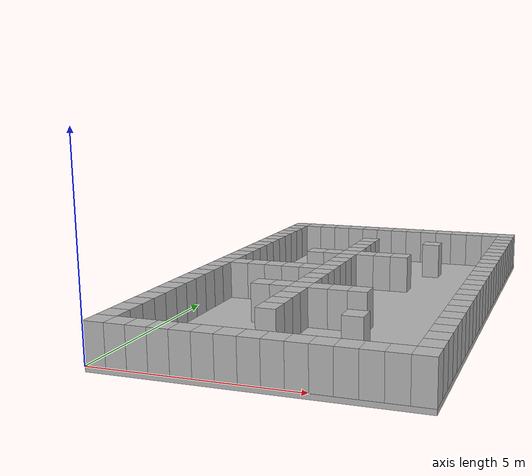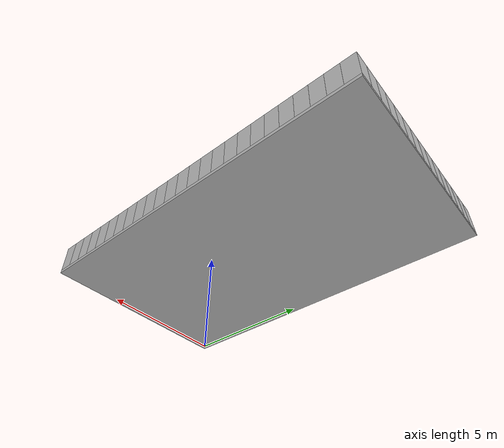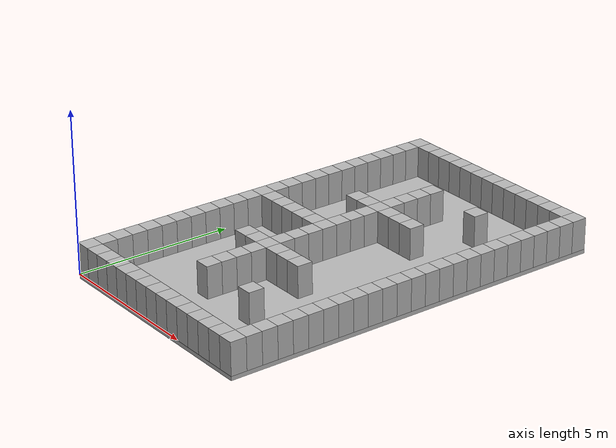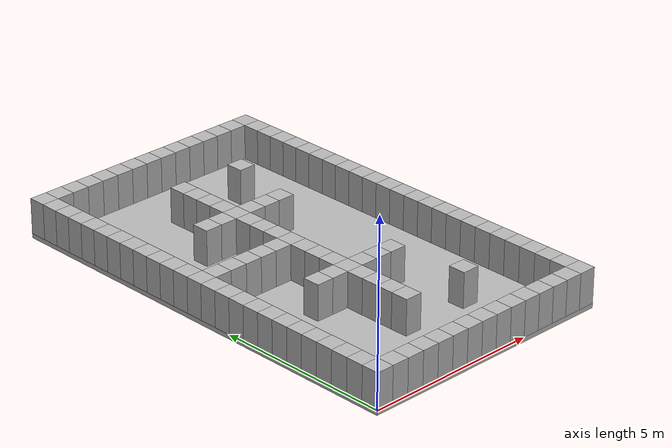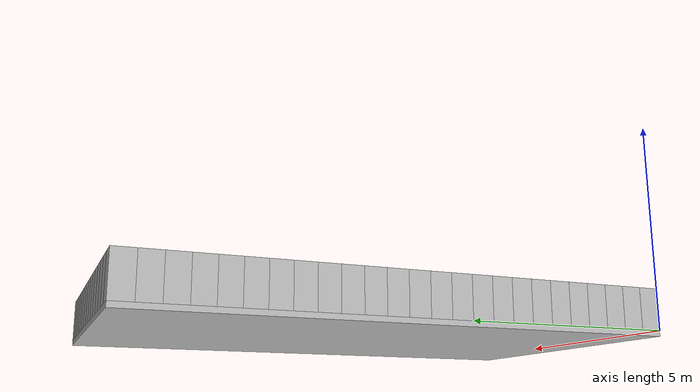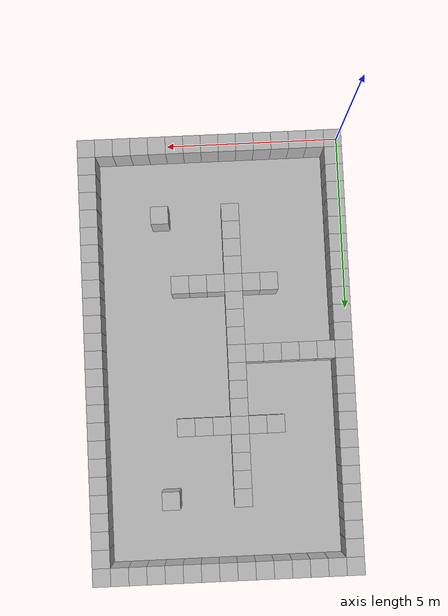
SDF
<sdf version="1.5">
  <model name="map">
    <static>1</static>
    <link name="map">
      <collision name="floor">
        <pose>3.75 6.25 -0.0625 0 0 0</pose>
        <geometry>
          <box>
            <size>7.5 12.5 0.125</size>
          </box>
        </geometry>
      </collision>
      <visual name="floor">
        <pose>3.75 6.25 -0.0625 0 0 0</pose>
        <geometry>
          <box>
            <size>7.5 12.5 0.125</size>
          </box>
        </geometry>
      </visual>
      <collision name="box_0_0">
        <pose>0.25 0.25 0.5 0 0 0</pose>
        <geometry>
          <box>
            <size>0.5 0.5 1.0</size>
          </box>
        </geometry>
      </collision>
      <visual name="box_0_0">
        <pose>0.25 0.25 0.5 0 0 0</pose>
        <geometry>
          <box>
            <size>0.5 0.5 1.0</size>
          </box>
        </geometry>
      </visual>
      <collision name="box_0_1">
        <pose>0.25 0.75 0.5 0 0 0</pose>
        <geometry>
          <box>
            <size>0.5 0.5 1.0</size>
          </box>
        </geometry>
      </collision>
      <visual name="box_0_1">
        <pose>0.25 0.75 0.5 0 0 0</pose>
        <geometry>
          <box>
            <size>0.5 0.5 1.0</size>
          </box>
        </geometry>
      </visual>
      <collision name="box_0_2">
        <pose>0.25 1.25 0.5 0 0 0</pose>
        <geometry>
          <box>
            <size>0.5 0.5 1.0</size>
          </box>
        </geometry>
      </collision>
      <visual name="box_0_2">
        <pose>0.25 1.25 0.5 0 0 0</pose>
        <geometry>
          <box>
            <size>0.5 0.5 1.0</size>
          </box>
        </geometry>
      </visual>
      <collision name="box_0_3">
        <pose>0.25 1.75 0.5 0 0 0</pose>
        <geometry>
          <box>
            <size>0.5 0.5 1.0</size>
          </box>
        </geometry>
      </collision>
      <visual name="box_0_3">
        <pose>0.25 1.75 0.5 0 0 0</pose>
        <geometry>
          <box>
            <size>0.5 0.5 1.0</size>
          </box>
        </geometry>
      </visual>
      <collision name="box_0_4">
        <pose>0.25 2.25 0.5 0 0 0</pose>
        <geometry>
          <box>
            <size>0.5 0.5 1.0</size>
          </box>
        </geometry>
      </collision>
      <visual name="box_0_4">
        <pose>0.25 2.25 0.5 0 0 0</pose>
        <geometry>
          <box>
            <size>0.5 0.5 1.0</size>
          </box>
        </geometry>
      </visual>
      <collision name="box_0_5">
        <pose>0.25 2.75 0.5 0 0 0</pose>
        <geometry>
          <box>
            <size>0.5 0.5 1.0</size>
          </box>
        </geometry>
      </collision>
      <visual name="box_0_5">
        <pose>0.25 2.75 0.5 0 0 0</pose>
        <geometry>
          <box>
            <size>0.5 0.5 1.0</size>
          </box>
        </geometry>
      </visual>
      <collision name="box_0_6">
        <pose>0.25 3.25 0.5 0 0 0</pose>
        <geometry>
          <box>
            <size>0.5 0.5 1.0</size>
          </box>
        </geometry>
      </collision>
      <visual name="box_0_6">
        <pose>0.25 3.25 0.5 0 0 0</pose>
        <geometry>
          <box>
            <size>0.5 0.5 1.0</size>
          </box>
        </geometry>
      </visual>
      <collision name="box_0_7">
        <pose>0.25 3.75 0.5 0 0 0</pose>
        <geometry>
          <box>
            <size>0.5 0.5 1.0</size>
          </box>
        </geometry>
      </collision>
      <visual name="box_0_7">
        <pose>0.25 3.75 0.5 0 0 0</pose>
        <geometry>
          <box>
            <size>0.5 0.5 1.0</size>
          </box>
        </geometry>
      </visual>
      <collision name="box_0_8">
        <pose>0.25 4.25 0.5 0 0 0</pose>
        <geometry>
          <box>
            <size>0.5 0.5 1.0</size>
          </box>
        </geometry>
      </collision>
      <visual name="box_0_8">
        <pose>0.25 4.25 0.5 0 0 0</pose>
        <geometry>
          <box>
            <size>0.5 0.5 1.0</size>
          </box>
        </geometry>
      </visual>
      <collision name="box_0_9">
        <pose>0.25 4.75 0.5 0 0 0</pose>
        <geometry>
          <box>
            <size>0.5 0.5 1.0</size>
          </box>
        </geometry>
      </collision>
      <visual name="box_0_9">
        <pose>0.25 4.75 0.5 0 0 0</pose>
        <geometry>
          <box>
            <size>0.5 0.5 1.0</size>
          </box>
        </geometry>
      </visual>
      <collision name="box_0_10">
        <pose>0.25 5.25 0.5 0 0 0</pose>
        <geometry>
          <box>
            <size>0.5 0.5 1.0</size>
          </box>
        </geometry>
      </collision>
      <visual name="box_0_10">
        <pose>0.25 5.25 0.5 0 0 0</pose>
        <geometry>
          <box>
            <size>0.5 0.5 1.0</size>
          </box>
        </geometry>
      </visual>
      <collision name="box_0_11">
        <pose>0.25 5.75 0.5 0 0 0</pose>
        <geometry>
          <box>
            <size>0.5 0.5 1.0</size>
          </box>
        </geometry>
      </collision>
      <visual name="box_0_11">
        <pose>0.25 5.75 0.5 0 0 0</pose>
        <geometry>
          <box>
            <size>0.5 0.5 1.0</size>
          </box>
        </geometry>
      </visual>
      <collision name="box_0_12">
        <pose>0.25 6.25 0.5 0 0 0</pose>
        <geometry>
          <box>
            <size>0.5 0.5 1.0</size>
          </box>
        </geometry>
      </collision>
      <visual name="box_0_12">
        <pose>0.25 6.25 0.5 0 0 0</pose>
        <geometry>
          <box>
            <size>0.5 0.5 1.0</size>
          </box>
        </geometry>
      </visual>
      <collision name="box_0_13">
        <pose>0.25 6.75 0.5 0 0 0</pose>
        <geometry>
          <box>
            <size>0.5 0.5 1.0</size>
          </box>
        </geometry>
      </collision>
      <visual name="box_0_13">
        <pose>0.25 6.75 0.5 0 0 0</pose>
        <geometry>
          <box>
            <size>0.5 0.5 1.0</size>
          </box>
        </geometry>
      </visual>
      <collision name="box_0_14">
        <pose>0.25 7.25 0.5 0 0 0</pose>
        <geometry>
          <box>
            <size>0.5 0.5 1.0</size>
          </box>
        </geometry>
      </collision>
      <visual name="box_0_14">
        <pose>0.25 7.25 0.5 0 0 0</pose>
        <geometry>
          <box>
            <size>0.5 0.5 1.0</size>
          </box>
        </geometry>
      </visual>
      <collision name="box_0_15">
        <pose>0.25 7.75 0.5 0 0 0</pose>
        <geometry>
          <box>
            <size>0.5 0.5 1.0</size>
          </box>
        </geometry>
      </collision>
      <visual name="box_0_15">
        <pose>0.25 7.75 0.5 0 0 0</pose>
        <geometry>
          <box>
            <size>0.5 0.5 1.0</size>
          </box>
        </geometry>
      </visual>
      <collision name="box_0_16">
        <pose>0.25 8.25 0.5 0 0 0</pose>
        <geometry>
          <box>
            <size>0.5 0.5 1.0</size>
          </box>
        </geometry>
      </collision>
      <visual name="box_0_16">
        <pose>0.25 8.25 0.5 0 0 0</pose>
        <geometry>
          <box>
            <size>0.5 0.5 1.0</size>
          </box>
        </geometry>
      </visual>
      <collision name="box_0_17">
        <pose>0.25 8.75 0.5 0 0 0</pose>
        <geometry>
          <box>
            <size>0.5 0.5 1.0</size>
          </box>
        </geometry>
      </collision>
      <visual name="box_0_17">
        <pose>0.25 8.75 0.5 0 0 0</pose>
        <geometry>
          <box>
            <size>0.5 0.5 1.0</size>
          </box>
        </geometry>
      </visual>
      <collision name="box_0_18">
        <pose>0.25 9.25 0.5 0 0 0</pose>
        <geometry>
          <box>
            <size>0.5 0.5 1.0</size>
          </box>
        </geometry>
      </collision>
      <visual name="box_0_18">
        <pose>0.25 9.25 0.5 0 0 0</pose>
        <geometry>
          <box>
            <size>0.5 0.5 1.0</size>
          </box>
        </geometry>
      </visual>
      <collision name="box_0_19">
        <pose>0.25 9.75 0.5 0 0 0</pose>
        <geometry>
          <box>
            <size>0.5 0.5 1.0</size>
          </box>
        </geometry>
      </collision>
      <visual name="box_0_19">
        <pose>0.25 9.75 0.5 0 0 0</pose>
        <geometry>
          <box>
            <size>0.5 0.5 1.0</size>
          </box>
        </geometry>
      </visual>
      <collision name="box_0_20">
        <pose>0.25 10.25 0.5 0 0 0</pose>
        <geometry>
          <box>
            <size>0.5 0.5 1.0</size>
          </box>
        </geometry>
      </collision>
      <visual name="box_0_20">
        <pose>0.25 10.25 0.5 0 0 0</pose>
        <geometry>
          <box>
            <size>0.5 0.5 1.0</size>
          </box>
        </geometry>
      </visual>
      <collision name="box_0_21">
        <pose>0.25 10.75 0.5 0 0 0</pose>
        <geometry>
          <box>
            <size>0.5 0.5 1.0</size>
          </box>
        </geometry>
      </collision>
      <visual name="box_0_21">
        <pose>0.25 10.75 0.5 0 0 0</pose>
        <geometry>
          <box>
            <size>0.5 0.5 1.0</size>
          </box>
        </geometry>
      </visual>
      <collision name="box_0_22">
        <pose>0.25 11.25 0.5 0 0 0</pose>
        <geometry>
          <box>
            <size>0.5 0.5 1.0</size>
          </box>
        </geometry>
      </collision>
      <visual name="box_0_22">
        <pose>0.25 11.25 0.5 0 0 0</pose>
        <geometry>
          <box>
            <size>0.5 0.5 1.0</size>
          </box>
        </geometry>
      </visual>
      <collision name="box_0_23">
        <pose>0.25 11.75 0.5 0 0 0</pose>
        <geometry>
          <box>
            <size>0.5 0.5 1.0</size>
          </box>
        </geometry>
      </collision>
      <visual name="box_0_23">
        <pose>0.25 11.75 0.5 0 0 0</pose>
        <geometry>
          <box>
            <size>0.5 0.5 1.0</size>
          </box>
        </geometry>
      </visual>
      <collision name="box_0_24">
        <pose>0.25 12.25 0.5 0 0 0</pose>
        <geometry>
          <box>
            <size>0.5 0.5 1.0</size>
          </box>
        </geometry>
      </collision>
      <visual name="box_0_24">
        <pose>0.25 12.25 0.5 0 0 0</pose>
        <geometry>
          <box>
            <size>0.5 0.5 1.0</size>
          </box>
        </geometry>
      </visual>
      <collision name="box_1_0">
        <pose>0.75 0.25 0.5 0 0 0</pose>
        <geometry>
          <box>
            <size>0.5 0.5 1.0</size>
          </box>
        </geometry>
      </collision>
      <visual name="box_1_0">
        <pose>0.75 0.25 0.5 0 0 0</pose>
        <geometry>
          <box>
            <size>0.5 0.5 1.0</size>
          </box>
        </geometry>
      </visual>
      <collision name="box_1_12">
        <pose>0.75 6.25 0.5 0 0 0</pose>
        <geometry>
          <box>
            <size>0.5 0.5 1.0</size>
          </box>
        </geometry>
      </collision>
      <visual name="box_1_12">
        <pose>0.75 6.25 0.5 0 0 0</pose>
        <geometry>
          <box>
            <size>0.5 0.5 1.0</size>
          </box>
        </geometry>
      </visual>
      <collision name="box_1_24">
        <pose>0.75 12.25 0.5 0 0 0</pose>
        <geometry>
          <box>
            <size>0.5 0.5 1.0</size>
          </box>
        </geometry>
      </collision>
      <visual name="box_1_24">
        <pose>0.75 12.25 0.5 0 0 0</pose>
        <geometry>
          <box>
            <size>0.5 0.5 1.0</size>
          </box>
        </geometry>
      </visual>
      <collision name="box_2_0">
        <pose>1.25 0.25 0.5 0 0 0</pose>
        <geometry>
          <box>
            <size>0.5 0.5 1.0</size>
          </box>
        </geometry>
      </collision>
      <visual name="box_2_0">
        <pose>1.25 0.25 0.5 0 0 0</pose>
        <geometry>
          <box>
            <size>0.5 0.5 1.0</size>
          </box>
        </geometry>
      </visual>
      <collision name="box_2_12">
        <pose>1.25 6.25 0.5 0 0 0</pose>
        <geometry>
          <box>
            <size>0.5 0.5 1.0</size>
          </box>
        </geometry>
      </collision>
      <visual name="box_2_12">
        <pose>1.25 6.25 0.5 0 0 0</pose>
        <geometry>
          <box>
            <size>0.5 0.5 1.0</size>
          </box>
        </geometry>
      </visual>
      <collision name="box_2_24">
        <pose>1.25 12.25 0.5 0 0 0</pose>
        <geometry>
          <box>
            <size>0.5 0.5 1.0</size>
          </box>
        </geometry>
      </collision>
      <visual name="box_2_24">
        <pose>1.25 12.25 0.5 0 0 0</pose>
        <geometry>
          <box>
            <size>0.5 0.5 1.0</size>
          </box>
        </geometry>
      </visual>
      <collision name="box_3_0">
        <pose>1.75 0.25 0.5 0 0 0</pose>
        <geometry>
          <box>
            <size>0.5 0.5 1.0</size>
          </box>
        </geometry>
      </collision>
      <visual name="box_3_0">
        <pose>1.75 0.25 0.5 0 0 0</pose>
        <geometry>
          <box>
            <size>0.5 0.5 1.0</size>
          </box>
        </geometry>
      </visual>
      <collision name="box_3_12">
        <pose>1.75 6.25 0.5 0 0 0</pose>
        <geometry>
          <box>
            <size>0.5 0.5 1.0</size>
          </box>
        </geometry>
      </collision>
      <visual name="box_3_12">
        <pose>1.75 6.25 0.5 0 0 0</pose>
        <geometry>
          <box>
            <size>0.5 0.5 1.0</size>
          </box>
        </geometry>
      </visual>
      <collision name="box_3_24">
        <pose>1.75 12.25 0.5 0 0 0</pose>
        <geometry>
          <box>
            <size>0.5 0.5 1.0</size>
          </box>
        </geometry>
      </collision>
      <visual name="box_3_24">
        <pose>1.75 12.25 0.5 0 0 0</pose>
        <geometry>
          <box>
            <size>0.5 0.5 1.0</size>
          </box>
        </geometry>
      </visual>
      <collision name="box_4_0">
        <pose>2.25 0.25 0.5 0 0 0</pose>
        <geometry>
          <box>
            <size>0.5 0.5 1.0</size>
          </box>
        </geometry>
      </collision>
      <visual name="box_4_0">
        <pose>2.25 0.25 0.5 0 0 0</pose>
        <geometry>
          <box>
            <size>0.5 0.5 1.0</size>
          </box>
        </geometry>
      </visual>
      <collision name="box_4_8">
        <pose>2.25 4.25 0.5 0 0 0</pose>
        <geometry>
          <box>
            <size>0.5 0.5 1.0</size>
          </box>
        </geometry>
      </collision>
      <visual name="box_4_8">
        <pose>2.25 4.25 0.5 0 0 0</pose>
        <geometry>
          <box>
            <size>0.5 0.5 1.0</size>
          </box>
        </geometry>
      </visual>
      <collision name="box_4_12">
        <pose>2.25 6.25 0.5 0 0 0</pose>
        <geometry>
          <box>
            <size>0.5 0.5 1.0</size>
          </box>
        </geometry>
      </collision>
      <visual name="box_4_12">
        <pose>2.25 6.25 0.5 0 0 0</pose>
        <geometry>
          <box>
            <size>0.5 0.5 1.0</size>
          </box>
        </geometry>
      </visual>
      <collision name="box_4_16">
        <pose>2.25 8.25 0.5 0 0 0</pose>
        <geometry>
          <box>
            <size>0.5 0.5 1.0</size>
          </box>
        </geometry>
      </collision>
      <visual name="box_4_16">
        <pose>2.25 8.25 0.5 0 0 0</pose>
        <geometry>
          <box>
            <size>0.5 0.5 1.0</size>
          </box>
        </geometry>
      </visual>
      <collision name="box_4_24">
        <pose>2.25 12.25 0.5 0 0 0</pose>
        <geometry>
          <box>
            <size>0.5 0.5 1.0</size>
          </box>
        </geometry>
      </collision>
      <visual name="box_4_24">
        <pose>2.25 12.25 0.5 0 0 0</pose>
        <geometry>
          <box>
            <size>0.5 0.5 1.0</size>
          </box>
        </geometry>
      </visual>
      <collision name="box_5_0">
        <pose>2.75 0.25 0.5 0 0 0</pose>
        <geometry>
          <box>
            <size>0.5 0.5 1.0</size>
          </box>
        </geometry>
      </collision>
      <visual name="box_5_0">
        <pose>2.75 0.25 0.5 0 0 0</pose>
        <geometry>
          <box>
            <size>0.5 0.5 1.0</size>
          </box>
        </geometry>
      </visual>
      <collision name="box_5_8">
        <pose>2.75 4.25 0.5 0 0 0</pose>
        <geometry>
          <box>
            <size>0.5 0.5 1.0</size>
          </box>
        </geometry>
      </collision>
      <visual name="box_5_8">
        <pose>2.75 4.25 0.5 0 0 0</pose>
        <geometry>
          <box>
            <size>0.5 0.5 1.0</size>
          </box>
        </geometry>
      </visual>
      <collision name="box_5_12">
        <pose>2.75 6.25 0.5 0 0 0</pose>
        <geometry>
          <box>
            <size>0.5 0.5 1.0</size>
          </box>
        </geometry>
      </collision>
      <visual name="box_5_12">
        <pose>2.75 6.25 0.5 0 0 0</pose>
        <geometry>
          <box>
            <size>0.5 0.5 1.0</size>
          </box>
        </geometry>
      </visual>
      <collision name="box_5_16">
        <pose>2.75 8.25 0.5 0 0 0</pose>
        <geometry>
          <box>
            <size>0.5 0.5 1.0</size>
          </box>
        </geometry>
      </collision>
      <visual name="box_5_16">
        <pose>2.75 8.25 0.5 0 0 0</pose>
        <geometry>
          <box>
            <size>0.5 0.5 1.0</size>
          </box>
        </geometry>
      </visual>
      <collision name="box_5_24">
        <pose>2.75 12.25 0.5 0 0 0</pose>
        <geometry>
          <box>
            <size>0.5 0.5 1.0</size>
          </box>
        </geometry>
      </collision>
      <visual name="box_5_24">
        <pose>2.75 12.25 0.5 0 0 0</pose>
        <geometry>
          <box>
            <size>0.5 0.5 1.0</size>
          </box>
        </geometry>
      </visual>
      <collision name="box_6_0">
        <pose>3.25 0.25 0.5 0 0 0</pose>
        <geometry>
          <box>
            <size>0.5 0.5 1.0</size>
          </box>
        </geometry>
      </collision>
      <visual name="box_6_0">
        <pose>3.25 0.25 0.5 0 0 0</pose>
        <geometry>
          <box>
            <size>0.5 0.5 1.0</size>
          </box>
        </geometry>
      </visual>
      <collision name="box_6_4">
        <pose>3.25 2.25 0.5 0 0 0</pose>
        <geometry>
          <box>
            <size>0.5 0.5 1.0</size>
          </box>
        </geometry>
      </collision>
      <visual name="box_6_4">
        <pose>3.25 2.25 0.5 0 0 0</pose>
        <geometry>
          <box>
            <size>0.5 0.5 1.0</size>
          </box>
        </geometry>
      </visual>
      <collision name="box_6_5">
        <pose>3.25 2.75 0.5 0 0 0</pose>
        <geometry>
          <box>
            <size>0.5 0.5 1.0</size>
          </box>
        </geometry>
      </collision>
      <visual name="box_6_5">
        <pose>3.25 2.75 0.5 0 0 0</pose>
        <geometry>
          <box>
            <size>0.5 0.5 1.0</size>
          </box>
        </geometry>
      </visual>
      <collision name="box_6_6">
        <pose>3.25 3.25 0.5 0 0 0</pose>
        <geometry>
          <box>
            <size>0.5 0.5 1.0</size>
          </box>
        </geometry>
      </collision>
      <visual name="box_6_6">
        <pose>3.25 3.25 0.5 0 0 0</pose>
        <geometry>
          <box>
            <size>0.5 0.5 1.0</size>
          </box>
        </geometry>
      </visual>
      <collision name="box_6_7">
        <pose>3.25 3.75 0.5 0 0 0</pose>
        <geometry>
          <box>
            <size>0.5 0.5 1.0</size>
          </box>
        </geometry>
      </collision>
      <visual name="box_6_7">
        <pose>3.25 3.75 0.5 0 0 0</pose>
        <geometry>
          <box>
            <size>0.5 0.5 1.0</size>
          </box>
        </geometry>
      </visual>
      <collision name="box_6_8">
        <pose>3.25 4.25 0.5 0 0 0</pose>
        <geometry>
          <box>
            <size>0.5 0.5 1.0</size>
          </box>
        </geometry>
      </collision>
      <visual name="box_6_8">
        <pose>3.25 4.25 0.5 0 0 0</pose>
        <geometry>
          <box>
            <size>0.5 0.5 1.0</size>
          </box>
        </geometry>
      </visual>
      <collision name="box_6_9">
        <pose>3.25 4.75 0.5 0 0 0</pose>
        <geometry>
          <box>
            <size>0.5 0.5 1.0</size>
          </box>
        </geometry>
      </collision>
      <visual name="box_6_9">
        <pose>3.25 4.75 0.5 0 0 0</pose>
        <geometry>
          <box>
            <size>0.5 0.5 1.0</size>
          </box>
        </geometry>
      </visual>
      <collision name="box_6_10">
        <pose>3.25 5.25 0.5 0 0 0</pose>
        <geometry>
          <box>
            <size>0.5 0.5 1.0</size>
          </box>
        </geometry>
      </collision>
      <visual name="box_6_10">
        <pose>3.25 5.25 0.5 0 0 0</pose>
        <geometry>
          <box>
            <size>0.5 0.5 1.0</size>
          </box>
        </geometry>
      </visual>
      <collision name="box_6_11">
        <pose>3.25 5.75 0.5 0 0 0</pose>
        <geometry>
          <box>
            <size>0.5 0.5 1.0</size>
          </box>
        </geometry>
      </collision>
      <visual name="box_6_11">
        <pose>3.25 5.75 0.5 0 0 0</pose>
        <geometry>
          <box>
            <size>0.5 0.5 1.0</size>
          </box>
        </geometry>
      </visual>
      <collision name="box_6_12">
        <pose>3.25 6.25 0.5 0 0 0</pose>
        <geometry>
          <box>
            <size>0.5 0.5 1.0</size>
          </box>
        </geometry>
      </collision>
      <visual name="box_6_12">
        <pose>3.25 6.25 0.5 0 0 0</pose>
        <geometry>
          <box>
            <size>0.5 0.5 1.0</size>
          </box>
        </geometry>
      </visual>
      <collision name="box_6_13">
        <pose>3.25 6.75 0.5 0 0 0</pose>
        <geometry>
          <box>
            <size>0.5 0.5 1.0</size>
          </box>
        </geometry>
      </collision>
      <visual name="box_6_13">
        <pose>3.25 6.75 0.5 0 0 0</pose>
        <geometry>
          <box>
            <size>0.5 0.5 1.0</size>
          </box>
        </geometry>
      </visual>
      <collision name="box_6_14">
        <pose>3.25 7.25 0.5 0 0 0</pose>
        <geometry>
          <box>
            <size>0.5 0.5 1.0</size>
          </box>
        </geometry>
      </collision>
      <visual name="box_6_14">
        <pose>3.25 7.25 0.5 0 0 0</pose>
        <geometry>
          <box>
            <size>0.5 0.5 1.0</size>
          </box>
        </geometry>
      </visual>
      <collision name="box_6_15">
        <pose>3.25 7.75 0.5 0 0 0</pose>
        <geometry>
          <box>
            <size>0.5 0.5 1.0</size>
          </box>
        </geometry>
      </collision>
      <visual name="box_6_15">
        <pose>3.25 7.75 0.5 0 0 0</pose>
        <geometry>
          <box>
            <size>0.5 0.5 1.0</size>
          </box>
        </geometry>
      </visual>
      <collision name="box_6_16">
        <pose>3.25 8.25 0.5 0 0 0</pose>
        <geometry>
          <box>
            <size>0.5 0.5 1.0</size>
          </box>
        </geometry>
      </collision>
      <visual name="box_6_16">
        <pose>3.25 8.25 0.5 0 0 0</pose>
        <geometry>
          <box>
            <size>0.5 0.5 1.0</size>
          </box>
        </geometry>
      </visual>
      <collision name="box_6_17">
        <pose>3.25 8.75 0.5 0 0 0</pose>
        <geometry>
          <box>
            <size>0.5 0.5 1.0</size>
          </box>
        </geometry>
      </collision>
      <visual name="box_6_17">
        <pose>3.25 8.75 0.5 0 0 0</pose>
        <geometry>
          <box>
            <size>0.5 0.5 1.0</size>
          </box>
        </geometry>
      </visual>
      <collision name="box_6_18">
        <pose>3.25 9.25 0.5 0 0 0</pose>
        <geometry>
          <box>
            <size>0.5 0.5 1.0</size>
          </box>
        </geometry>
      </collision>
      <visual name="box_6_18">
        <pose>3.25 9.25 0.5 0 0 0</pose>
        <geometry>
          <box>
            <size>0.5 0.5 1.0</size>
          </box>
        </geometry>
      </visual>
      <collision name="box_6_19">
        <pose>3.25 9.75 0.5 0 0 0</pose>
        <geometry>
          <box>
            <size>0.5 0.5 1.0</size>
          </box>
        </geometry>
      </collision>
      <visual name="box_6_19">
        <pose>3.25 9.75 0.5 0 0 0</pose>
        <geometry>
          <box>
            <size>0.5 0.5 1.0</size>
          </box>
        </geometry>
      </visual>
      <collision name="box_6_20">
        <pose>3.25 10.25 0.5 0 0 0</pose>
        <geometry>
          <box>
            <size>0.5 0.5 1.0</size>
          </box>
        </geometry>
      </collision>
      <visual name="box_6_20">
        <pose>3.25 10.25 0.5 0 0 0</pose>
        <geometry>
          <box>
            <size>0.5 0.5 1.0</size>
          </box>
        </geometry>
      </visual>
      <collision name="box_6_24">
        <pose>3.25 12.25 0.5 0 0 0</pose>
        <geometry>
          <box>
            <size>0.5 0.5 1.0</size>
          </box>
        </geometry>
      </collision>
      <visual name="box_6_24">
        <pose>3.25 12.25 0.5 0 0 0</pose>
        <geometry>
          <box>
            <size>0.5 0.5 1.0</size>
          </box>
        </geometry>
      </visual>
      <collision name="box_7_0">
        <pose>3.75 0.25 0.5 0 0 0</pose>
        <geometry>
          <box>
            <size>0.5 0.5 1.0</size>
          </box>
        </geometry>
      </collision>
      <visual name="box_7_0">
        <pose>3.75 0.25 0.5 0 0 0</pose>
        <geometry>
          <box>
            <size>0.5 0.5 1.0</size>
          </box>
        </geometry>
      </visual>
      <collision name="box_7_8">
        <pose>3.75 4.25 0.5 0 0 0</pose>
        <geometry>
          <box>
            <size>0.5 0.5 1.0</size>
          </box>
        </geometry>
      </collision>
      <visual name="box_7_8">
        <pose>3.75 4.25 0.5 0 0 0</pose>
        <geometry>
          <box>
            <size>0.5 0.5 1.0</size>
          </box>
        </geometry>
      </visual>
      <collision name="box_7_16">
        <pose>3.75 8.25 0.5 0 0 0</pose>
        <geometry>
          <box>
            <size>0.5 0.5 1.0</size>
          </box>
        </geometry>
      </collision>
      <visual name="box_7_16">
        <pose>3.75 8.25 0.5 0 0 0</pose>
        <geometry>
          <box>
            <size>0.5 0.5 1.0</size>
          </box>
        </geometry>
      </visual>
      <collision name="box_7_24">
        <pose>3.75 12.25 0.5 0 0 0</pose>
        <geometry>
          <box>
            <size>0.5 0.5 1.0</size>
          </box>
        </geometry>
      </collision>
      <visual name="box_7_24">
        <pose>3.75 12.25 0.5 0 0 0</pose>
        <geometry>
          <box>
            <size>0.5 0.5 1.0</size>
          </box>
        </geometry>
      </visual>
      <collision name="box_8_0">
        <pose>4.25 0.25 0.5 0 0 0</pose>
        <geometry>
          <box>
            <size>0.5 0.5 1.0</size>
          </box>
        </geometry>
      </collision>
      <visual name="box_8_0">
        <pose>4.25 0.25 0.5 0 0 0</pose>
        <geometry>
          <box>
            <size>0.5 0.5 1.0</size>
          </box>
        </geometry>
      </visual>
      <collision name="box_8_8">
        <pose>4.25 4.25 0.5 0 0 0</pose>
        <geometry>
          <box>
            <size>0.5 0.5 1.0</size>
          </box>
        </geometry>
      </collision>
      <visual name="box_8_8">
        <pose>4.25 4.25 0.5 0 0 0</pose>
        <geometry>
          <box>
            <size>0.5 0.5 1.0</size>
          </box>
        </geometry>
      </visual>
      <collision name="box_8_16">
        <pose>4.25 8.25 0.5 0 0 0</pose>
        <geometry>
          <box>
            <size>0.5 0.5 1.0</size>
          </box>
        </geometry>
      </collision>
      <visual name="box_8_16">
        <pose>4.25 8.25 0.5 0 0 0</pose>
        <geometry>
          <box>
            <size>0.5 0.5 1.0</size>
          </box>
        </geometry>
      </visual>
      <collision name="box_8_24">
        <pose>4.25 12.25 0.5 0 0 0</pose>
        <geometry>
          <box>
            <size>0.5 0.5 1.0</size>
          </box>
        </geometry>
      </collision>
      <visual name="box_8_24">
        <pose>4.25 12.25 0.5 0 0 0</pose>
        <geometry>
          <box>
            <size>0.5 0.5 1.0</size>
          </box>
        </geometry>
      </visual>
      <collision name="box_9_0">
        <pose>4.75 0.25 0.5 0 0 0</pose>
        <geometry>
          <box>
            <size>0.5 0.5 1.0</size>
          </box>
        </geometry>
      </collision>
      <visual name="box_9_0">
        <pose>4.75 0.25 0.5 0 0 0</pose>
        <geometry>
          <box>
            <size>0.5 0.5 1.0</size>
          </box>
        </geometry>
      </visual>
      <collision name="box_9_8">
        <pose>4.75 4.25 0.5 0 0 0</pose>
        <geometry>
          <box>
            <size>0.5 0.5 1.0</size>
          </box>
        </geometry>
      </collision>
      <visual name="box_9_8">
        <pose>4.75 4.25 0.5 0 0 0</pose>
        <geometry>
          <box>
            <size>0.5 0.5 1.0</size>
          </box>
        </geometry>
      </visual>
      <collision name="box_9_16">
        <pose>4.75 8.25 0.5 0 0 0</pose>
        <geometry>
          <box>
            <size>0.5 0.5 1.0</size>
          </box>
        </geometry>
      </collision>
      <visual name="box_9_16">
        <pose>4.75 8.25 0.5 0 0 0</pose>
        <geometry>
          <box>
            <size>0.5 0.5 1.0</size>
          </box>
        </geometry>
      </visual>
      <collision name="box_9_24">
        <pose>4.75 12.25 0.5 0 0 0</pose>
        <geometry>
          <box>
            <size>0.5 0.5 1.0</size>
          </box>
        </geometry>
      </collision>
      <visual name="box_9_24">
        <pose>4.75 12.25 0.5 0 0 0</pose>
        <geometry>
          <box>
            <size>0.5 0.5 1.0</size>
          </box>
        </geometry>
      </visual>
      <collision name="box_10_0">
        <pose>5.25 0.25 0.5 0 0 0</pose>
        <geometry>
          <box>
            <size>0.5 0.5 1.0</size>
          </box>
        </geometry>
      </collision>
      <visual name="box_10_0">
        <pose>5.25 0.25 0.5 0 0 0</pose>
        <geometry>
          <box>
            <size>0.5 0.5 1.0</size>
          </box>
        </geometry>
      </visual>
      <collision name="box_10_4">
        <pose>5.25 2.25 0.5 0 0 0</pose>
        <geometry>
          <box>
            <size>0.5 0.5 1.0</size>
          </box>
        </geometry>
      </collision>
      <visual name="box_10_4">
        <pose>5.25 2.25 0.5 0 0 0</pose>
        <geometry>
          <box>
            <size>0.5 0.5 1.0</size>
          </box>
        </geometry>
      </visual>
      <collision name="box_10_20">
        <pose>5.25 10.25 0.5 0 0 0</pose>
        <geometry>
          <box>
            <size>0.5 0.5 1.0</size>
          </box>
        </geometry>
      </collision>
      <visual name="box_10_20">
        <pose>5.25 10.25 0.5 0 0 0</pose>
        <geometry>
          <box>
            <size>0.5 0.5 1.0</size>
          </box>
        </geometry>
      </visual>
      <collision name="box_10_24">
        <pose>5.25 12.25 0.5 0 0 0</pose>
        <geometry>
          <box>
            <size>0.5 0.5 1.0</size>
          </box>
        </geometry>
      </collision>
      <visual name="box_10_24">
        <pose>5.25 12.25 0.5 0 0 0</pose>
        <geometry>
          <box>
            <size>0.5 0.5 1.0</size>
          </box>
        </geometry>
      </visual>
      <collision name="box_11_0">
        <pose>5.75 0.25 0.5 0 0 0</pose>
        <geometry>
          <box>
            <size>0.5 0.5 1.0</size>
          </box>
        </geometry>
      </collision>
      <visual name="box_11_0">
        <pose>5.75 0.25 0.5 0 0 0</pose>
        <geometry>
          <box>
            <size>0.5 0.5 1.0</size>
          </box>
        </geometry>
      </visual>
      <collision name="box_11_24">
        <pose>5.75 12.25 0.5 0 0 0</pose>
        <geometry>
          <box>
            <size>0.5 0.5 1.0</size>
          </box>
        </geometry>
      </collision>
      <visual name="box_11_24">
        <pose>5.75 12.25 0.5 0 0 0</pose>
        <geometry>
          <box>
            <size>0.5 0.5 1.0</size>
          </box>
        </geometry>
      </visual>
      <collision name="box_12_0">
        <pose>6.25 0.25 0.5 0 0 0</pose>
        <geometry>
          <box>
            <size>0.5 0.5 1.0</size>
          </box>
        </geometry>
      </collision>
      <visual name="box_12_0">
        <pose>6.25 0.25 0.5 0 0 0</pose>
        <geometry>
          <box>
            <size>0.5 0.5 1.0</size>
          </box>
        </geometry>
      </visual>
      <collision name="box_12_24">
        <pose>6.25 12.25 0.5 0 0 0</pose>
        <geometry>
          <box>
            <size>0.5 0.5 1.0</size>
          </box>
        </geometry>
      </collision>
      <visual name="box_12_24">
        <pose>6.25 12.25 0.5 0 0 0</pose>
        <geometry>
          <box>
            <size>0.5 0.5 1.0</size>
          </box>
        </geometry>
      </visual>
      <collision name="box_13_0">
        <pose>6.75 0.25 0.5 0 0 0</pose>
        <geometry>
          <box>
            <size>0.5 0.5 1.0</size>
          </box>
        </geometry>
      </collision>
      <visual name="box_13_0">
        <pose>6.75 0.25 0.5 0 0 0</pose>
        <geometry>
          <box>
            <size>0.5 0.5 1.0</size>
          </box>
        </geometry>
      </visual>
      <collision name="box_13_24">
        <pose>6.75 12.25 0.5 0 0 0</pose>
        <geometry>
          <box>
            <size>0.5 0.5 1.0</size>
          </box>
        </geometry>
      </collision>
      <visual name="box_13_24">
        <pose>6.75 12.25 0.5 0 0 0</pose>
        <geometry>
          <box>
            <size>0.5 0.5 1.0</size>
          </box>
        </geometry>
      </visual>
      <collision name="box_14_0">
        <pose>7.25 0.25 0.5 0 0 0</pose>
        <geometry>
          <box>
            <size>0.5 0.5 1.0</size>
          </box>
        </geometry>
      </collision>
      <visual name="box_14_0">
        <pose>7.25 0.25 0.5 0 0 0</pose>
        <geometry>
          <box>
            <size>0.5 0.5 1.0</size>
          </box>
        </geometry>
      </visual>
      <collision name="box_14_1">
        <pose>7.25 0.75 0.5 0 0 0</pose>
        <geometry>
          <box>
            <size>0.5 0.5 1.0</size>
          </box>
        </geometry>
      </collision>
      <visual name="box_14_1">
        <pose>7.25 0.75 0.5 0 0 0</pose>
        <geometry>
          <box>
            <size>0.5 0.5 1.0</size>
          </box>
        </geometry>
      </visual>
      <collision name="box_14_2">
        <pose>7.25 1.25 0.5 0 0 0</pose>
        <geometry>
          <box>
            <size>0.5 0.5 1.0</size>
          </box>
        </geometry>
      </collision>
      <visual name="box_14_2">
        <pose>7.25 1.25 0.5 0 0 0</pose>
        <geometry>
          <box>
            <size>0.5 0.5 1.0</size>
          </box>
        </geometry>
      </visual>
      <collision name="box_14_3">
        <pose>7.25 1.75 0.5 0 0 0</pose>
        <geometry>
          <box>
            <size>0.5 0.5 1.0</size>
          </box>
        </geometry>
      </collision>
      <visual name="box_14_3">
        <pose>7.25 1.75 0.5 0 0 0</pose>
        <geometry>
          <box>
            <size>0.5 0.5 1.0</size>
          </box>
        </geometry>
      </visual>
      <collision name="box_14_4">
        <pose>7.25 2.25 0.5 0 0 0</pose>
        <geometry>
          <box>
            <size>0.5 0.5 1.0</size>
          </box>
        </geometry>
      </collision>
      <visual name="box_14_4">
        <pose>7.25 2.25 0.5 0 0 0</pose>
        <geometry>
          <box>
            <size>0.5 0.5 1.0</size>
          </box>
        </geometry>
      </visual>
      <collision name="box_14_5">
        <pose>7.25 2.75 0.5 0 0 0</pose>
        <geometry>
          <box>
            <size>0.5 0.5 1.0</size>
          </box>
        </geometry>
      </collision>
      <visual name="box_14_5">
        <pose>7.25 2.75 0.5 0 0 0</pose>
        <geometry>
          <box>
            <size>0.5 0.5 1.0</size>
          </box>
        </geometry>
      </visual>
      <collision name="box_14_6">
        <pose>7.25 3.25 0.5 0 0 0</pose>
        <geometry>
          <box>
            <size>0.5 0.5 1.0</size>
          </box>
        </geometry>
      </collision>
      <visual name="box_14_6">
        <pose>7.25 3.25 0.5 0 0 0</pose>
        <geometry>
          <box>
            <size>0.5 0.5 1.0</size>
          </box>
        </geometry>
      </visual>
      <collision name="box_14_7">
        <pose>7.25 3.75 0.5 0 0 0</pose>
        <geometry>
          <box>
            <size>0.5 0.5 1.0</size>
          </box>
        </geometry>
      </collision>
      <visual name="box_14_7">
        <pose>7.25 3.75 0.5 0 0 0</pose>
        <geometry>
          <box>
            <size>0.5 0.5 1.0</size>
          </box>
        </geometry>
      </visual>
      <collision name="box_14_8">
        <pose>7.25 4.25 0.5 0 0 0</pose>
        <geometry>
          <box>
            <size>0.5 0.5 1.0</size>
          </box>
        </geometry>
      </collision>
      <visual name="box_14_8">
        <pose>7.25 4.25 0.5 0 0 0</pose>
        <geometry>
          <box>
            <size>0.5 0.5 1.0</size>
          </box>
        </geometry>
      </visual>
      <collision name="box_14_9">
        <pose>7.25 4.75 0.5 0 0 0</pose>
        <geometry>
          <box>
            <size>0.5 0.5 1.0</size>
          </box>
        </geometry>
      </collision>
      <visual name="box_14_9">
        <pose>7.25 4.75 0.5 0 0 0</pose>
        <geometry>
          <box>
            <size>0.5 0.5 1.0</size>
          </box>
        </geometry>
      </visual>
      <collision name="box_14_10">
        <pose>7.25 5.25 0.5 0 0 0</pose>
        <geometry>
          <box>
            <size>0.5 0.5 1.0</size>
          </box>
        </geometry>
      </collision>
      <visual name="box_14_10">
        <pose>7.25 5.25 0.5 0 0 0</pose>
        <geometry>
          <box>
            <size>0.5 0.5 1.0</size>
          </box>
        </geometry>
      </visual>
      <collision name="box_14_11">
        <pose>7.25 5.75 0.5 0 0 0</pose>
        <geometry>
          <box>
            <size>0.5 0.5 1.0</size>
          </box>
        </geometry>
      </collision>
      <visual name="box_14_11">
        <pose>7.25 5.75 0.5 0 0 0</pose>
        <geometry>
          <box>
            <size>0.5 0.5 1.0</size>
          </box>
        </geometry>
      </visual>
      <collision name="box_14_12">
        <pose>7.25 6.25 0.5 0 0 0</pose>
        <geometry>
          <box>
            <size>0.5 0.5 1.0</size>
          </box>
        </geometry>
      </collision>
      <visual name="box_14_12">
        <pose>7.25 6.25 0.5 0 0 0</pose>
        <geometry>
          <box>
            <size>0.5 0.5 1.0</size>
          </box>
        </geometry>
      </visual>
      <collision name="box_14_13">
        <pose>7.25 6.75 0.5 0 0 0</pose>
        <geometry>
          <box>
            <size>0.5 0.5 1.0</size>
          </box>
        </geometry>
      </collision>
      <visual name="box_14_13">
        <pose>7.25 6.75 0.5 0 0 0</pose>
        <geometry>
          <box>
            <size>0.5 0.5 1.0</size>
          </box>
        </geometry>
      </visual>
      <collision name="box_14_14">
        <pose>7.25 7.25 0.5 0 0 0</pose>
        <geometry>
          <box>
            <size>0.5 0.5 1.0</size>
          </box>
        </geometry>
      </collision>
      <visual name="box_14_14">
        <pose>7.25 7.25 0.5 0 0 0</pose>
        <geometry>
          <box>
            <size>0.5 0.5 1.0</size>
          </box>
        </geometry>
      </visual>
      <collision name="box_14_15">
        <pose>7.25 7.75 0.5 0 0 0</pose>
        <geometry>
          <box>
            <size>0.5 0.5 1.0</size>
          </box>
        </geometry>
      </collision>
      <visual name="box_14_15">
        <pose>7.25 7.75 0.5 0 0 0</pose>
        <geometry>
          <box>
            <size>0.5 0.5 1.0</size>
          </box>
        </geometry>
      </visual>
      <collision name="box_14_16">
        <pose>7.25 8.25 0.5 0 0 0</pose>
        <geometry>
          <box>
            <size>0.5 0.5 1.0</size>
          </box>
        </geometry>
      </collision>
      <visual name="box_14_16">
        <pose>7.25 8.25 0.5 0 0 0</pose>
        <geometry>
          <box>
            <size>0.5 0.5 1.0</size>
          </box>
        </geometry>
      </visual>
      <collision name="box_14_17">
        <pose>7.25 8.75 0.5 0 0 0</pose>
        <geometry>
          <box>
            <size>0.5 0.5 1.0</size>
          </box>
        </geometry>
      </collision>
      <visual name="box_14_17">
        <pose>7.25 8.75 0.5 0 0 0</pose>
        <geometry>
          <box>
            <size>0.5 0.5 1.0</size>
          </box>
        </geometry>
      </visual>
      <collision name="box_14_18">
        <pose>7.25 9.25 0.5 0 0 0</pose>
        <geometry>
          <box>
            <size>0.5 0.5 1.0</size>
          </box>
        </geometry>
      </collision>
      <visual name="box_14_18">
        <pose>7.25 9.25 0.5 0 0 0</pose>
        <geometry>
          <box>
            <size>0.5 0.5 1.0</size>
          </box>
        </geometry>
      </visual>
      <collision name="box_14_19">
        <pose>7.25 9.75 0.5 0 0 0</pose>
        <geometry>
          <box>
            <size>0.5 0.5 1.0</size>
          </box>
        </geometry>
      </collision>
      <visual name="box_14_19">
        <pose>7.25 9.75 0.5 0 0 0</pose>
        <geometry>
          <box>
            <size>0.5 0.5 1.0</size>
          </box>
        </geometry>
      </visual>
      <collision name="box_14_20">
        <pose>7.25 10.25 0.5 0 0 0</pose>
        <geometry>
          <box>
            <size>0.5 0.5 1.0</size>
          </box>
        </geometry>
      </collision>
      <visual name="box_14_20">
        <pose>7.25 10.25 0.5 0 0 0</pose>
        <geometry>
          <box>
            <size>0.5 0.5 1.0</size>
          </box>
        </geometry>
      </visual>
      <collision name="box_14_21">
        <pose>7.25 10.75 0.5 0 0 0</pose>
        <geometry>
          <box>
            <size>0.5 0.5 1.0</size>
          </box>
        </geometry>
      </collision>
      <visual name="box_14_21">
        <pose>7.25 10.75 0.5 0 0 0</pose>
        <geometry>
          <box>
            <size>0.5 0.5 1.0</size>
          </box>
        </geometry>
      </visual>
      <collision name="box_14_22">
        <pose>7.25 11.25 0.5 0 0 0</pose>
        <geometry>
          <box>
            <size>0.5 0.5 1.0</size>
          </box>
        </geometry>
      </collision>
      <visual name="box_14_22">
        <pose>7.25 11.25 0.5 0 0 0</pose>
        <geometry>
          <box>
            <size>0.5 0.5 1.0</size>
          </box>
        </geometry>
      </visual>
      <collision name="box_14_23">
        <pose>7.25 11.75 0.5 0 0 0</pose>
        <geometry>
          <box>
            <size>0.5 0.5 1.0</size>
          </box>
        </geometry>
      </collision>
      <visual name="box_14_23">
        <pose>7.25 11.75 0.5 0 0 0</pose>
        <geometry>
          <box>
            <size>0.5 0.5 1.0</size>
          </box>
        </geometry>
      </visual>
      <collision name="box_14_24">
        <pose>7.25 12.25 0.5 0 0 0</pose>
        <geometry>
          <box>
            <size>0.5 0.5 1.0</size>
          </box>
        </geometry>
      </collision>
      <visual name="box_14_24">
        <pose>7.25 12.25 0.5 0 0 0</pose>
        <geometry>
          <box>
            <size>0.5 0.5 1.0</size>
          </box>
        </geometry>
      </visual>
    </link>
  </model>
</sdf>
